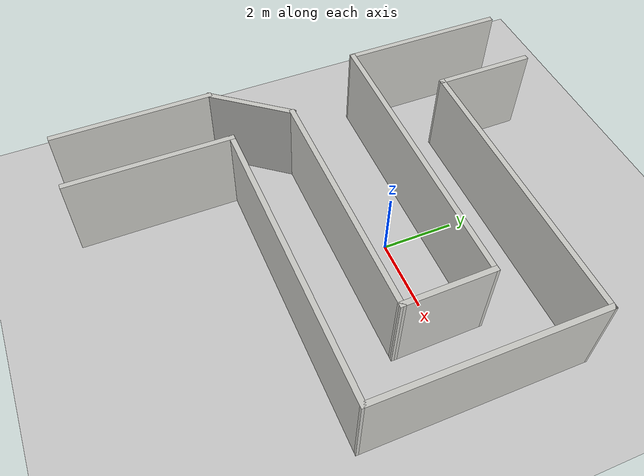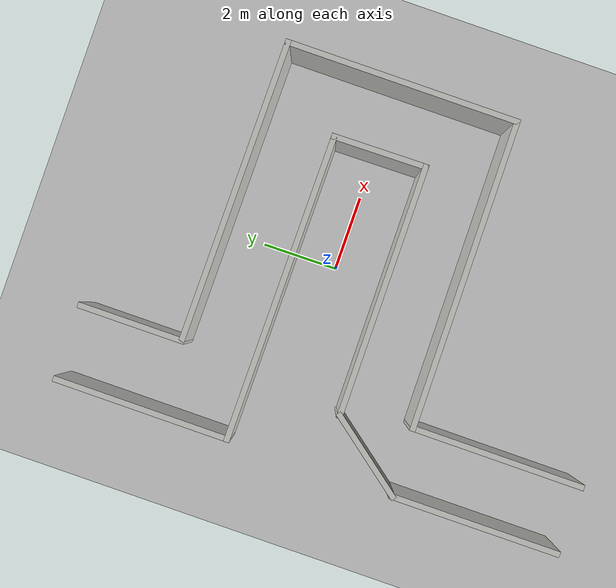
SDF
<sdf version="1.7">
 <world name="default">
  <light name="sun" type="directional">
   <pose>0 0 10 0 -0 0</pose>
   <diffuse>0.8 0.8 0.8 1</diffuse>
   <specular>0.2 0.2 0.2 1</specular>
   <attenuation>
    <range>1000</range>
    <constant>0.9</constant>
    <linear>0.01</linear>
    <quadratic>0.001</quadratic>
   </attenuation>
   <direction>-0.5 0.1 -0.9</direction>
   <spot><inner_angle>0</inner_angle><outer_angle>0</outer_angle><falloff>0</falloff></spot>
  </light>
  <model name="ground_plane">
   <static>1</static>
   <link name="link">
    <collision name="collision">
     <geometry><plane><normal>0 0 1</normal><size>100 100</size></plane></geometry>
     <surface>
      <contact><collide_bitmask>65535</collide_bitmask></contact>
      <friction><ode><mu>100</mu><mu2>50</mu2></ode></friction>
     </surface>
    </collision>
    <visual name="visual">
     <cast_shadows>0</cast_shadows>
     <geometry><plane><normal>0 0 1</normal><size>100 100</size></plane></geometry>
     <material>
      <script><uri>file://media/materials/scripts/gazebo.material</uri><name>Gazebo/Grey</name></script>
     </material>
    </visual>
   </link>
  </model>
  <gravity>0 0 -9.8</gravity>
  <magnetic_field>6e-06 2.3e-05 -4.2e-05</magnetic_field>
  <atmosphere type="adiabatic"/>
  <physics type="ode">
   <max_step_size>0.001</max_step_size>
   <real_time_factor>1</real_time_factor>
   <real_time_update_rate>1000</real_time_update_rate>
  </physics>
  <scene><ambient>0.4 0.4 0.4 1</ambient><background>0.7 0.7 0.7 1</background><shadows>1</shadows></scene>
  <spherical_coordinates>
   <surface_model>EARTH_WGS84</surface_model>
   <latitude_deg>0</latitude_deg>
   <longitude_deg>0</longitude_deg>
   <elevation>0</elevation>
   <heading_deg>0</heading_deg>
  </spherical_coordinates>
  <model name="race3">
   <pose>-0.049895 -0.930093 0 0 -0 0</pose>
   <link name="Wall_0">
    <collision name="Wall_0_Collision">
     <geometry><box><size>4.5 0.15 2.5</size></box></geometry>
     <pose>0 0 1.25 0 -0 0</pose>
    </collision>
    <visual name="Wall_0_Visual">
     <pose>0 0 1.25 0 -0 0</pose>
     <geometry><box><size>4.5 0.15 2.5</size></box></geometry>
     <material>
      <script><uri>file://media/materials/scripts/gazebo.material</uri><name>Gazebo/CeilingTiled</name></script>
      <ambient>1 1 1 1</ambient>
     </material>
     <meta><layer>0</layer></meta>
    </visual>
    <pose>-4.92011 -4.44491 0 0 -0 1.5708</pose>
   </link>
   <link name="Wall_1">
    <collision name="Wall_1_Collision">
     <geometry><box><size>2.5584 0.15 2.5</size></box></geometry>
     <pose>0 0 1.25 0 -0 0</pose>
    </collision>
    <visual name="Wall_1_Visual">
     <pose>0 0 1.25 0 -0 0</pose>
     <geometry><box><size>2.5584 0.15 2.5</size></box></geometry>
     <material>
      <script><uri>file://media/materials/scripts/gazebo.material</uri><name>Gazebo/CeilingTiled</name></script>
      <ambient>1 1 1 1</ambient>
     </material>
     <meta><layer>0</layer></meta>
    </visual>
    <pose>-4.18011 -1.31991 0 0 -0 0.909025</pose>
   </link>
   <link name="Wall_10">
    <collision name="Wall_10_Collision">
     <geometry><box><size>8.07002 0.15 2.5</size></box></geometry>
     <pose>0 0 1.25 0 -0 0</pose>
    </collision>
    <visual name="Wall_10_Visual">
     <pose>0 0 1.25 0 -0 0</pose>
     <geometry><box><size>8.07002 0.15 2.5</size></box></geometry>
     <material>
      <script><uri>file://media/materials/scripts/gazebo.material</uri><name>Gazebo/CeilingTiled</name></script>
      <ambient>1 1 1 1</ambient>
     </material>
     <meta><layer>0</layer></meta>
    </visual>
    <pose>0.989895 3.95009 0 0 -0 3.13402</pose>
   </link>
   <link name="Wall_11">
    <collision name="Wall_11_Collision">
     <geometry><box><size>2.82 0.15 2.5</size></box></geometry>
     <pose>0 0 1.25 0 -0 0</pose>
    </collision>
    <visual name="Wall_11_Visual">
     <pose>0 0 1.25 0 -0 0</pose>
     <geometry><box><size>2.82 0.15 2.5</size></box></geometry>
     <material>
      <script><uri>file://media/materials/scripts/gazebo.material</uri><name>Gazebo/CeilingTiled</name></script>
      <ambient>1 1 1 1</ambient>
     </material>
     <meta><layer>0</layer></meta>
    </visual>
    <pose>-2.97011 5.31509 0 0 -0 1.5708</pose>
   </link>
   <link name="Wall_2">
    <collision name="Wall_2_Collision">
     <geometry><box><size>6.72001 0.15 2.5</size></box></geometry>
     <pose>0 0 1.25 0 -0 0</pose>
    </collision>
    <visual name="Wall_2_Visual">
     <pose>0 0 1.25 0 -0 0</pose>
     <geometry><box><size>6.72001 0.15 2.5</size></box></geometry>
     <material>
      <script><uri>file://media/materials/scripts/gazebo.material</uri><name>Gazebo/CeilingTiled</name></script>
      <ambient>1 1 1 1</ambient>
     </material>
     <meta><layer>0</layer></meta>
    </visual>
    <pose>-0.155105 -0.364907 0 0 -0 0.001522</pose>
   </link>
   <link name="Wall_3">
    <collision name="Wall_3_Collision">
     <geometry><box><size>2.56019 0.15 2.5</size></box></geometry>
     <pose>0 0 1.25 0 -0 0</pose>
    </collision>
    <visual name="Wall_3_Visual">
     <pose>0 0 1.25 0 -0 0</pose>
     <geometry><box><size>2.56019 0.15 2.5</size></box></geometry>
     <material>
      <script><uri>file://media/materials/scripts/gazebo.material</uri><name>Gazebo/CeilingTiled</name></script>
      <ambient>1 1 1 1</ambient>
     </material>
     <meta><layer>0</layer></meta>
    </visual>
    <pose>3.1149 0.845093 0 0 -0 1.58324</pose>
   </link>
   <link name="Wall_4">
    <collision name="Wall_4_Collision">
     <geometry><box><size>8.1704 0.15 2.5</size></box></geometry>
     <pose>0 0 1.25 0 -0 0</pose>
    </collision>
    <visual name="Wall_4_Visual">
     <pose>0 0 1.25 0 -0 0</pose>
     <geometry><box><size>8.1704 0.15 2.5</size></box></geometry>
     <material>
      <script><uri>file://media/materials/scripts/gazebo.material</uri><name>Gazebo/CeilingTiled</name></script>
      <ambient>1 1 1 1</ambient>
     </material>
     <meta><layer>0</layer></meta>
    </visual>
    <pose>-0.910105 2.07509 0 0 -0 3.13536</pose>
   </link>
   <link name="Wall_5">
    <collision name="Wall_5_Collision">
     <geometry><box><size>4.68001 0.15 2.5</size></box></geometry>
     <pose>0 0 1.25 0 -0 0</pose>
    </collision>
    <visual name="Wall_5_Visual">
     <pose>0 0 1.25 0 -0 0</pose>
     <geometry><box><size>4.68001 0.15 2.5</size></box></geometry>
     <material>
      <script><uri>file://media/materials/scripts/gazebo.material</uri><name>Gazebo/CeilingTiled</name></script>
      <ambient>1 1 1 1</ambient>
     </material>
     <meta><layer>0</layer></meta>
    </visual>
    <pose>-4.9151 4.36509 0 0 -0 1.56859</pose>
   </link>
   <link name="Wall_7">
    <collision name="Wall_7_Collision">
     <geometry><box><size>4.60004 0.15 2.5</size></box></geometry>
     <pose>0 0 1.25 0 -0 0</pose>
    </collision>
    <visual name="Wall_7_Visual">
     <pose>0 0 1.25 0 -0 0</pose>
     <geometry><box><size>4.60004 0.15 2.5</size></box></geometry>
     <material>
      <script><uri>file://media/materials/scripts/gazebo.material</uri><name>Gazebo/CeilingTiled</name></script>
      <ambient>1 1 1 1</ambient>
     </material>
     <meta><layer>0</layer></meta>
    </visual>
    <pose>-3.14511 -4.42491 0 0 -0 1.56855</pose>
   </link>
   <link name="Wall_8">
    <collision name="Wall_8_Collision">
     <geometry><box><size>8.24015 0.15 2.5</size></box></geometry>
     <pose>0 0 1.25 0 -0 0</pose>
    </collision>
    <visual name="Wall_8_Visual">
     <pose>0 0 1.25 0 -0 0</pose>
     <geometry><box><size>8.24015 0.15 2.5</size></box></geometry>
     <material>
      <script><uri>file://media/materials/scripts/gazebo.material</uri><name>Gazebo/CeilingTiled</name></script>
      <ambient>1 1 1 1</ambient>
     </material>
     <meta><layer>0</layer></meta>
    </visual>
    <pose>0.904895 -2.17491 0 0 -0 0.00618</pose>
   </link>
   <link name="Wall_9">
    <collision name="Wall_9_Collision">
     <geometry><box><size>6.22013 0.15 2.5</size></box></geometry>
     <pose>0 0 1.25 0 -0 0</pose>
    </collision>
    <visual name="Wall_9_Visual">
     <pose>0 0 1.25 0 -0 0</pose>
     <geometry><box><size>6.22013 0.15 2.5</size></box></geometry>
     <material>
      <script><uri>file://media/materials/scripts/gazebo.material</uri><name>Gazebo/CeilingTiled</name></script>
      <ambient>1 1 1 1</ambient>
     </material>
     <meta><layer>0</layer></meta>
    </visual>
    <pose>4.94989 0.885093 0 0 -0 1.5708</pose>
   </link>
   <static>1</static>
  </model>
 </world>
</sdf>
